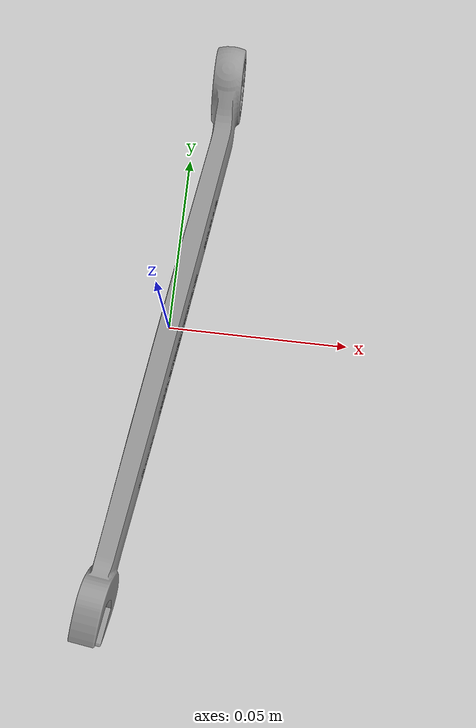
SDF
<?xml version='1.0'?>
<sdf version='1.4'>
  <model name='wrench15'>
    <link name='wrench15_link'>
      <pose>0 0 0 0 -1.57079 0</pose>
      <gravity>1</gravity>
      <self_collide>1</self_collide>
      <kinematic>0</kinematic>
      <inertial>
        <mass>0.059</mass>
        <pose>0 0 0 0 -0 0</pose>
      </inertial>
      <visual name='visual'>
        <pose>0 0 0 0 -0 0</pose>
        <geometry>
          <mesh>
            <uri>model://wrench15/meshes/wrench15.dae</uri>
            <scale>0.001 0.001 0.001</scale>
          </mesh>
        </geometry>
        <material>
          <script>
            <uri>file://media/materials/scripts/gazebo.material</uri>
            <name>Gazebo/Grey</name>
          </script>
          <shader type='pixel'>
            <normal_map>__default__</normal_map>
          </shader>
          <ambient>0.3 0.3 0.3 1</ambient>
          <diffuse>0.7 0.7 0.7 1</diffuse>
          <specular>0.01 0.01 0.01 1</specular>
          <emissive>0 0 0 1</emissive>
        </material>
        <cast_shadows>1</cast_shadows>
        <transparency>0</transparency>
      </visual>
      <collision name='collision'>
        <laser_retro>0</laser_retro>
        <max_contacts>10</max_contacts>
        <pose>0 0 0 0 -0 0</pose>
        <geometry>
          <mesh>
            <uri>model://wrench15/meshes/wrench15.dae</uri>
            <scale>0.001 0.001 0.001</scale>
          </mesh>
        </geometry>
        <surface>
          <friction>
            <ode>
              <mu>100</mu>
              <mu2>50</mu2>
            </ode>
          </friction>
          <bounce>
            <restitution_coefficient>0</restitution_coefficient>
            <threshold>1e+06</threshold>
          </bounce>
        </surface>
      </collision>
    </link>
    <static>0</static>
    <allow_auto_disable>1</allow_auto_disable>
  </model>
</sdf>
